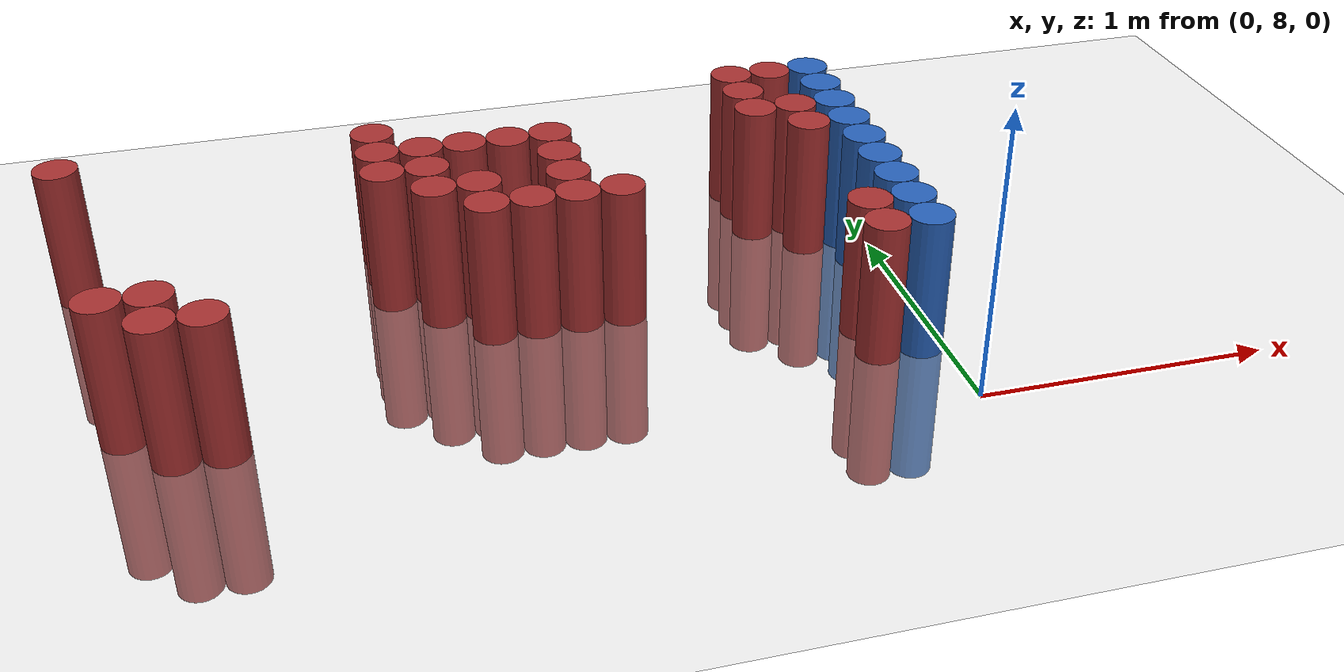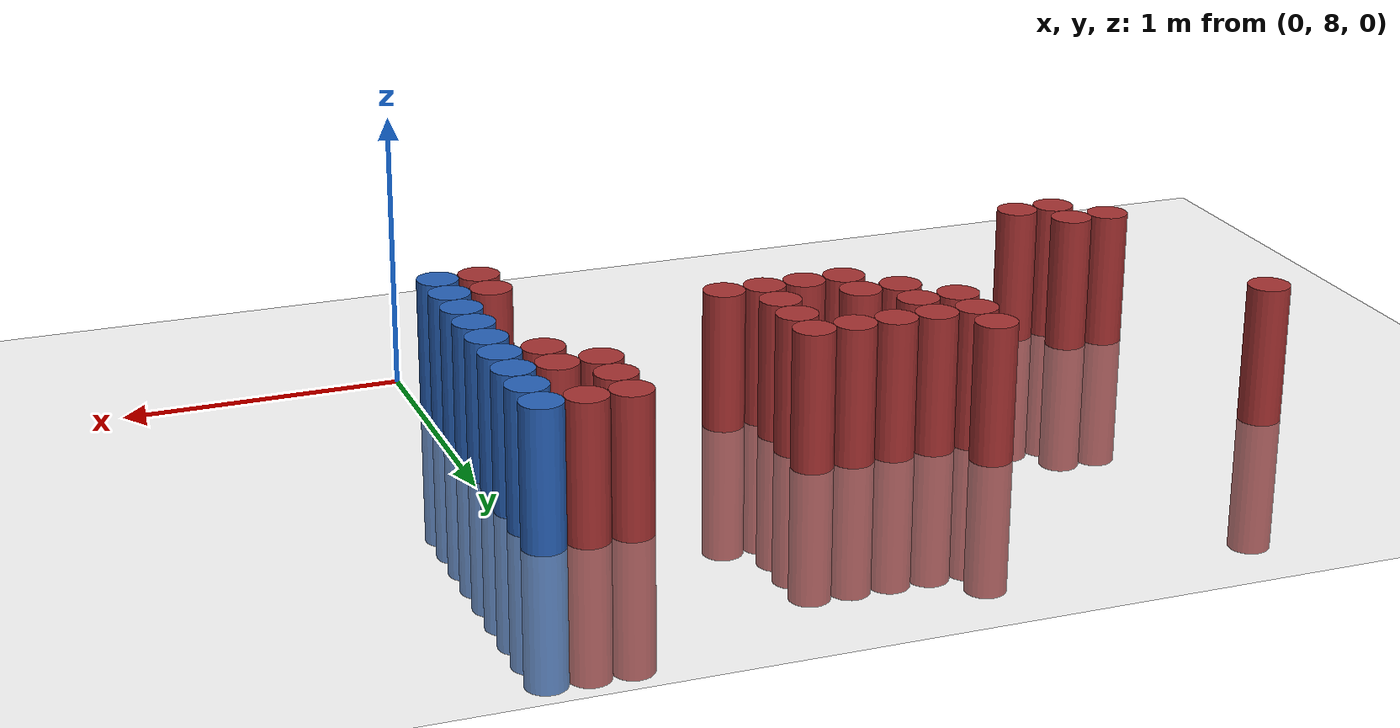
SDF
<sdf version="1.6">
 <world name="default">
  <model name="ground_plane">
   <static>1</static>
   <link name="link">
    <collision name="collision">
     <geometry><plane><normal>0 0 1</normal><size>100 100</size></plane></geometry>
     <surface><friction><ode><mu>100</mu><mu2>50</mu2></ode></friction></surface>
    </collision>
    <visual name="visual">
     <cast_shadows>0</cast_shadows>
     <geometry><plane><normal>0 0 1</normal><size>100 100</size></plane></geometry>
     <material>
      <script><uri>file://media/materials/scripts/gazebo.material</uri><name>Gazebo/Grey</name></script>
     </material>
    </visual>
   </link>
  </model>
  <model name="unit_cylinder_195">
   <static>1</static>
   <pose>-2.775000 9.375000 0.000000 0.000000 0.000000 0.000000</pose>
   <link name="link">
    <inertial>
     <mass>1</mass>
     <inertia><ixx>0.145833</ixx><ixy>0</ixy><ixz>0</ixz><iyy>0.145833</iyy><iyz>0</iyz><izz>0.125</izz></inertia>
    </inertial>
    <collision name="collision">
     <geometry><cylinder><radius>0.075000</radius><length>1</length></cylinder></geometry>
    </collision>
    <visual name="visual">
     <geometry><cylinder><radius>0.075000</radius><length>1</length></cylinder></geometry>
     <material>
      <ambient>0.648000 0.192000 0.192000 1</ambient>
      <diffuse>0.648000 0.192000 0.192000 1</diffuse>
     </material>
     <material>
      <script><name>Gazebo/Grey</name><uri>file://media/materials/scripts/gazebo.material</uri></script>
     </material>
    </visual>
    <sensor name="sensor_contact" type="contact"><contact><collision>collision</collision></contact></sensor>
   </link>
   <plugin filename="gz-sim-touchplugin-system" name="gz::sim::systems::TouchPlugin">
    <target>robot</target>
    <namespace>robot</namespace>
    <time>0.001</time>
    <enabled>true</enabled>
   </plugin>
  </model>
  <model name="unit_cylinder_198">
   <static>1</static>
   <pose>-2.625000 8.475000 0.000000 0.000000 0.000000 0.000000</pose>
   <link name="link">
    <inertial>
     <mass>1</mass>
     <inertia><ixx>0.145833</ixx><ixy>0</ixy><ixz>0</ixz><iyy>0.145833</iyy><iyz>0</iyz><izz>0.125</izz></inertia>
    </inertial>
    <collision name="collision">
     <geometry><cylinder><radius>0.075000</radius><length>1</length></cylinder></geometry>
    </collision>
    <visual name="visual">
     <geometry><cylinder><radius>0.075000</radius><length>1</length></cylinder></geometry>
     <material>
      <ambient>0.648000 0.192000 0.192000 1</ambient>
      <diffuse>0.648000 0.192000 0.192000 1</diffuse>
     </material>
     <material>
      <script><name>Gazebo/Grey</name><uri>file://media/materials/scripts/gazebo.material</uri></script>
     </material>
    </visual>
    <sensor name="sensor_contact" type="contact"><contact><collision>collision</collision></contact></sensor>
   </link>
   <plugin filename="gz-sim-touchplugin-system" name="gz::sim::systems::TouchPlugin">
    <target>robot</target>
    <namespace>robot</namespace>
    <time>0.001</time>
    <enabled>true</enabled>
   </plugin>
  </model>
  <model name="unit_cylinder_200">
   <static>1</static>
   <pose>-2.475000 8.325000 0.000000 0.000000 0.000000 0.000000</pose>
   <link name="link">
    <inertial>
     <mass>1</mass>
     <inertia><ixx>0.145833</ixx><ixy>0</ixy><ixz>0</ixz><iyy>0.145833</iyy><iyz>0</iyz><izz>0.125</izz></inertia>
    </inertial>
    <collision name="collision">
     <geometry><cylinder><radius>0.075000</radius><length>1</length></cylinder></geometry>
    </collision>
    <visual name="visual">
     <geometry><cylinder><radius>0.075000</radius><length>1</length></cylinder></geometry>
     <material>
      <ambient>0.648000 0.192000 0.192000 1</ambient>
      <diffuse>0.648000 0.192000 0.192000 1</diffuse>
     </material>
     <material>
      <script><name>Gazebo/Grey</name><uri>file://media/materials/scripts/gazebo.material</uri></script>
     </material>
    </visual>
    <sensor name="sensor_contact" type="contact"><contact><collision>collision</collision></contact></sensor>
   </link>
   <plugin filename="gz-sim-touchplugin-system" name="gz::sim::systems::TouchPlugin">
    <target>robot</target>
    <namespace>robot</namespace>
    <time>0.001</time>
    <enabled>true</enabled>
   </plugin>
  </model>
  <model name="unit_cylinder_201">
   <static>1</static>
   <pose>-2.475000 8.475000 0.000000 0.000000 0.000000 0.000000</pose>
   <link name="link">
    <inertial>
     <mass>1</mass>
     <inertia><ixx>0.145833</ixx><ixy>0</ixy><ixz>0</ixz><iyy>0.145833</iyy><iyz>0</iyz><izz>0.125</izz></inertia>
    </inertial>
    <collision name="collision">
     <geometry><cylinder><radius>0.075000</radius><length>1</length></cylinder></geometry>
    </collision>
    <visual name="visual">
     <geometry><cylinder><radius>0.075000</radius><length>1</length></cylinder></geometry>
     <material>
      <ambient>0.648000 0.192000 0.192000 1</ambient>
      <diffuse>0.648000 0.192000 0.192000 1</diffuse>
     </material>
     <material>
      <script><name>Gazebo/Grey</name><uri>file://media/materials/scripts/gazebo.material</uri></script>
     </material>
    </visual>
    <sensor name="sensor_contact" type="contact"><contact><collision>collision</collision></contact></sensor>
   </link>
   <plugin filename="gz-sim-touchplugin-system" name="gz::sim::systems::TouchPlugin">
    <target>robot</target>
    <namespace>robot</namespace>
    <time>0.001</time>
    <enabled>true</enabled>
   </plugin>
  </model>
  <model name="unit_cylinder_202">
   <static>1</static>
   <pose>-2.325000 8.325000 0.000000 0.000000 0.000000 0.000000</pose>
   <link name="link">
    <inertial>
     <mass>1</mass>
     <inertia><ixx>0.145833</ixx><ixy>0</ixy><ixz>0</ixz><iyy>0.145833</iyy><iyz>0</iyz><izz>0.125</izz></inertia>
    </inertial>
    <collision name="collision">
     <geometry><cylinder><radius>0.075000</radius><length>1</length></cylinder></geometry>
    </collision>
    <visual name="visual">
     <geometry><cylinder><radius>0.075000</radius><length>1</length></cylinder></geometry>
     <material>
      <ambient>0.648000 0.192000 0.192000 1</ambient>
      <diffuse>0.648000 0.192000 0.192000 1</diffuse>
     </material>
     <material>
      <script><name>Gazebo/Grey</name><uri>file://media/materials/scripts/gazebo.material</uri></script>
     </material>
    </visual>
    <sensor name="sensor_contact" type="contact"><contact><collision>collision</collision></contact></sensor>
   </link>
   <plugin filename="gz-sim-touchplugin-system" name="gz::sim::systems::TouchPlugin">
    <target>robot</target>
    <namespace>robot</namespace>
    <time>0.001</time>
    <enabled>true</enabled>
   </plugin>
  </model>
  <model name="unit_cylinder_217">
   <static>1</static>
   <pose>-1.725000 9.075000 0.000000 0.000000 0.000000 0.000000</pose>
   <link name="link">
    <inertial>
     <mass>1</mass>
     <inertia><ixx>0.145833</ixx><ixy>0</ixy><ixz>0</ixz><iyy>0.145833</iyy><iyz>0</iyz><izz>0.125</izz></inertia>
    </inertial>
    <collision name="collision">
     <geometry><cylinder><radius>0.075000</radius><length>1</length></cylinder></geometry>
    </collision>
    <visual name="visual">
     <geometry><cylinder><radius>0.075000</radius><length>1</length></cylinder></geometry>
     <material>
      <ambient>0.648000 0.192000 0.192000 1</ambient>
      <diffuse>0.648000 0.192000 0.192000 1</diffuse>
     </material>
     <material>
      <script><name>Gazebo/Grey</name><uri>file://media/materials/scripts/gazebo.material</uri></script>
     </material>
    </visual>
    <sensor name="sensor_contact" type="contact"><contact><collision>collision</collision></contact></sensor>
   </link>
   <plugin filename="gz-sim-touchplugin-system" name="gz::sim::systems::TouchPlugin">
    <target>robot</target>
    <namespace>robot</namespace>
    <time>0.001</time>
    <enabled>true</enabled>
   </plugin>
  </model>
  <model name="unit_cylinder_218">
   <static>1</static>
   <pose>-1.725000 9.225000 0.000000 0.000000 0.000000 0.000000</pose>
   <link name="link">
    <inertial>
     <mass>1</mass>
     <inertia><ixx>0.145833</ixx><ixy>0</ixy><ixz>0</ixz><iyy>0.145833</iyy><iyz>0</iyz><izz>0.125</izz></inertia>
    </inertial>
    <collision name="collision">
     <geometry><cylinder><radius>0.075000</radius><length>1</length></cylinder></geometry>
    </collision>
    <visual name="visual">
     <geometry><cylinder><radius>0.075000</radius><length>1</length></cylinder></geometry>
     <material>
      <ambient>0.648000 0.192000 0.192000 1</ambient>
      <diffuse>0.648000 0.192000 0.192000 1</diffuse>
     </material>
     <material>
      <script><name>Gazebo/Grey</name><uri>file://media/materials/scripts/gazebo.material</uri></script>
     </material>
    </visual>
    <sensor name="sensor_contact" type="contact"><contact><collision>collision</collision></contact></sensor>
   </link>
   <plugin filename="gz-sim-touchplugin-system" name="gz::sim::systems::TouchPlugin">
    <target>robot</target>
    <namespace>robot</namespace>
    <time>0.001</time>
    <enabled>true</enabled>
   </plugin>
  </model>
  <model name="unit_cylinder_219">
   <static>1</static>
   <pose>-1.725000 9.375000 0.000000 0.000000 0.000000 0.000000</pose>
   <link name="link">
    <inertial>
     <mass>1</mass>
     <inertia><ixx>0.145833</ixx><ixy>0</ixy><ixz>0</ixz><iyy>0.145833</iyy><iyz>0</iyz><izz>0.125</izz></inertia>
    </inertial>
    <collision name="collision">
     <geometry><cylinder><radius>0.075000</radius><length>1</length></cylinder></geometry>
    </collision>
    <visual name="visual">
     <geometry><cylinder><radius>0.075000</radius><length>1</length></cylinder></geometry>
     <material>
      <ambient>0.648000 0.192000 0.192000 1</ambient>
      <diffuse>0.648000 0.192000 0.192000 1</diffuse>
     </material>
     <material>
      <script><name>Gazebo/Grey</name><uri>file://media/materials/scripts/gazebo.material</uri></script>
     </material>
    </visual>
    <sensor name="sensor_contact" type="contact"><contact><collision>collision</collision></contact></sensor>
   </link>
   <plugin filename="gz-sim-touchplugin-system" name="gz::sim::systems::TouchPlugin">
    <target>robot</target>
    <namespace>robot</namespace>
    <time>0.001</time>
    <enabled>true</enabled>
   </plugin>
  </model>
  <model name="unit_cylinder_225">
   <static>1</static>
   <pose>-1.575000 8.925000 0.000000 0.000000 0.000000 0.000000</pose>
   <link name="link">
    <inertial>
     <mass>1</mass>
     <inertia><ixx>0.145833</ixx><ixy>0</ixy><ixz>0</ixz><iyy>0.145833</iyy><iyz>0</iyz><izz>0.125</izz></inertia>
    </inertial>
    <collision name="collision">
     <geometry><cylinder><radius>0.075000</radius><length>1</length></cylinder></geometry>
    </collision>
    <visual name="visual">
     <geometry><cylinder><radius>0.075000</radius><length>1</length></cylinder></geometry>
     <material>
      <ambient>0.648000 0.192000 0.192000 1</ambient>
      <diffuse>0.648000 0.192000 0.192000 1</diffuse>
     </material>
     <material>
      <script><name>Gazebo/Grey</name><uri>file://media/materials/scripts/gazebo.material</uri></script>
     </material>
    </visual>
    <sensor name="sensor_contact" type="contact"><contact><collision>collision</collision></contact></sensor>
   </link>
   <plugin filename="gz-sim-touchplugin-system" name="gz::sim::systems::TouchPlugin">
    <target>robot</target>
    <namespace>robot</namespace>
    <time>0.001</time>
    <enabled>true</enabled>
   </plugin>
  </model>
  <model name="unit_cylinder_226">
   <static>1</static>
   <pose>-1.575000 9.075000 0.000000 0.000000 0.000000 0.000000</pose>
   <link name="link">
    <inertial>
     <mass>1</mass>
     <inertia><ixx>0.145833</ixx><ixy>0</ixy><ixz>0</ixz><iyy>0.145833</iyy><iyz>0</iyz><izz>0.125</izz></inertia>
    </inertial>
    <collision name="collision">
     <geometry><cylinder><radius>0.075000</radius><length>1</length></cylinder></geometry>
    </collision>
    <visual name="visual">
     <geometry><cylinder><radius>0.075000</radius><length>1</length></cylinder></geometry>
     <material>
      <ambient>0.648000 0.192000 0.192000 1</ambient>
      <diffuse>0.648000 0.192000 0.192000 1</diffuse>
     </material>
     <material>
      <script><name>Gazebo/Grey</name><uri>file://media/materials/scripts/gazebo.material</uri></script>
     </material>
    </visual>
    <sensor name="sensor_contact" type="contact"><contact><collision>collision</collision></contact></sensor>
   </link>
   <plugin filename="gz-sim-touchplugin-system" name="gz::sim::systems::TouchPlugin">
    <target>robot</target>
    <namespace>robot</namespace>
    <time>0.001</time>
    <enabled>true</enabled>
   </plugin>
  </model>
  <model name="unit_cylinder_227">
   <static>1</static>
   <pose>-1.575000 9.225000 0.000000 0.000000 0.000000 0.000000</pose>
   <link name="link">
    <inertial>
     <mass>1</mass>
     <inertia><ixx>0.145833</ixx><ixy>0</ixy><ixz>0</ixz><iyy>0.145833</iyy><iyz>0</iyz><izz>0.125</izz></inertia>
    </inertial>
    <collision name="collision">
     <geometry><cylinder><radius>0.075000</radius><length>1</length></cylinder></geometry>
    </collision>
    <visual name="visual">
     <geometry><cylinder><radius>0.075000</radius><length>1</length></cylinder></geometry>
     <material>
      <ambient>0.648000 0.192000 0.192000 1</ambient>
      <diffuse>0.648000 0.192000 0.192000 1</diffuse>
     </material>
     <material>
      <script><name>Gazebo/Grey</name><uri>file://media/materials/scripts/gazebo.material</uri></script>
     </material>
    </visual>
    <sensor name="sensor_contact" type="contact"><contact><collision>collision</collision></contact></sensor>
   </link>
   <plugin filename="gz-sim-touchplugin-system" name="gz::sim::systems::TouchPlugin">
    <target>robot</target>
    <namespace>robot</namespace>
    <time>0.001</time>
    <enabled>true</enabled>
   </plugin>
  </model>
  <model name="unit_cylinder_234">
   <static>1</static>
   <pose>-1.425000 8.775000 0.000000 0.000000 0.000000 0.000000</pose>
   <link name="link">
    <inertial>
     <mass>1</mass>
     <inertia><ixx>0.145833</ixx><ixy>0</ixy><ixz>0</ixz><iyy>0.145833</iyy><iyz>0</iyz><izz>0.125</izz></inertia>
    </inertial>
    <collision name="collision">
     <geometry><cylinder><radius>0.075000</radius><length>1</length></cylinder></geometry>
    </collision>
    <visual name="visual">
     <geometry><cylinder><radius>0.075000</radius><length>1</length></cylinder></geometry>
     <material>
      <ambient>0.648000 0.192000 0.192000 1</ambient>
      <diffuse>0.648000 0.192000 0.192000 1</diffuse>
     </material>
     <material>
      <script><name>Gazebo/Grey</name><uri>file://media/materials/scripts/gazebo.material</uri></script>
     </material>
    </visual>
    <sensor name="sensor_contact" type="contact"><contact><collision>collision</collision></contact></sensor>
   </link>
   <plugin filename="gz-sim-touchplugin-system" name="gz::sim::systems::TouchPlugin">
    <target>robot</target>
    <namespace>robot</namespace>
    <time>0.001</time>
    <enabled>true</enabled>
   </plugin>
  </model>
  <model name="unit_cylinder_235">
   <static>1</static>
   <pose>-1.425000 8.925000 0.000000 0.000000 0.000000 0.000000</pose>
   <link name="link">
    <inertial>
     <mass>1</mass>
     <inertia><ixx>0.145833</ixx><ixy>0</ixy><ixz>0</ixz><iyy>0.145833</iyy><iyz>0</iyz><izz>0.125</izz></inertia>
    </inertial>
    <collision name="collision">
     <geometry><cylinder><radius>0.075000</radius><length>1</length></cylinder></geometry>
    </collision>
    <visual name="visual">
     <geometry><cylinder><radius>0.075000</radius><length>1</length></cylinder></geometry>
     <material>
      <ambient>0.648000 0.192000 0.192000 1</ambient>
      <diffuse>0.648000 0.192000 0.192000 1</diffuse>
     </material>
     <material>
      <script><name>Gazebo/Grey</name><uri>file://media/materials/scripts/gazebo.material</uri></script>
     </material>
    </visual>
    <sensor name="sensor_contact" type="contact"><contact><collision>collision</collision></contact></sensor>
   </link>
   <plugin filename="gz-sim-touchplugin-system" name="gz::sim::systems::TouchPlugin">
    <target>robot</target>
    <namespace>robot</namespace>
    <time>0.001</time>
    <enabled>true</enabled>
   </plugin>
  </model>
  <model name="unit_cylinder_236">
   <static>1</static>
   <pose>-1.425000 9.225000 0.000000 0.000000 0.000000 0.000000</pose>
   <link name="link">
    <inertial>
     <mass>1</mass>
     <inertia><ixx>0.145833</ixx><ixy>0</ixy><ixz>0</ixz><iyy>0.145833</iyy><iyz>0</iyz><izz>0.125</izz></inertia>
    </inertial>
    <collision name="collision">
     <geometry><cylinder><radius>0.075000</radius><length>1</length></cylinder></geometry>
    </collision>
    <visual name="visual">
     <geometry><cylinder><radius>0.075000</radius><length>1</length></cylinder></geometry>
     <material>
      <ambient>0.648000 0.192000 0.192000 1</ambient>
      <diffuse>0.648000 0.192000 0.192000 1</diffuse>
     </material>
     <material>
      <script><name>Gazebo/Grey</name><uri>file://media/materials/scripts/gazebo.material</uri></script>
     </material>
    </visual>
    <sensor name="sensor_contact" type="contact"><contact><collision>collision</collision></contact></sensor>
   </link>
   <plugin filename="gz-sim-touchplugin-system" name="gz::sim::systems::TouchPlugin">
    <target>robot</target>
    <namespace>robot</namespace>
    <time>0.001</time>
    <enabled>true</enabled>
   </plugin>
  </model>
  <model name="unit_cylinder_242">
   <static>1</static>
   <pose>-1.275000 8.775000 0.000000 0.000000 0.000000 0.000000</pose>
   <link name="link">
    <inertial>
     <mass>1</mass>
     <inertia><ixx>0.145833</ixx><ixy>0</ixy><ixz>0</ixz><iyy>0.145833</iyy><iyz>0</iyz><izz>0.125</izz></inertia>
    </inertial>
    <collision name="collision">
     <geometry><cylinder><radius>0.075000</radius><length>1</length></cylinder></geometry>
    </collision>
    <visual name="visual">
     <geometry><cylinder><radius>0.075000</radius><length>1</length></cylinder></geometry>
     <material>
      <ambient>0.648000 0.192000 0.192000 1</ambient>
      <diffuse>0.648000 0.192000 0.192000 1</diffuse>
     </material>
     <material>
      <script><name>Gazebo/Grey</name><uri>file://media/materials/scripts/gazebo.material</uri></script>
     </material>
    </visual>
    <sensor name="sensor_contact" type="contact"><contact><collision>collision</collision></contact></sensor>
   </link>
   <plugin filename="gz-sim-touchplugin-system" name="gz::sim::systems::TouchPlugin">
    <target>robot</target>
    <namespace>robot</namespace>
    <time>0.001</time>
    <enabled>true</enabled>
   </plugin>
  </model>
  <model name="unit_cylinder_243">
   <static>1</static>
   <pose>-1.275000 9.225000 0.000000 0.000000 0.000000 0.000000</pose>
   <link name="link">
    <inertial>
     <mass>1</mass>
     <inertia><ixx>0.145833</ixx><ixy>0</ixy><ixz>0</ixz><iyy>0.145833</iyy><iyz>0</iyz><izz>0.125</izz></inertia>
    </inertial>
    <collision name="collision">
     <geometry><cylinder><radius>0.075000</radius><length>1</length></cylinder></geometry>
    </collision>
    <visual name="visual">
     <geometry><cylinder><radius>0.075000</radius><length>1</length></cylinder></geometry>
     <material>
      <ambient>0.648000 0.192000 0.192000 1</ambient>
      <diffuse>0.648000 0.192000 0.192000 1</diffuse>
     </material>
     <material>
      <script><name>Gazebo/Grey</name><uri>file://media/materials/scripts/gazebo.material</uri></script>
     </material>
    </visual>
    <sensor name="sensor_contact" type="contact"><contact><collision>collision</collision></contact></sensor>
   </link>
   <plugin filename="gz-sim-touchplugin-system" name="gz::sim::systems::TouchPlugin">
    <target>robot</target>
    <namespace>robot</namespace>
    <time>0.001</time>
    <enabled>true</enabled>
   </plugin>
  </model>
  <model name="unit_cylinder_250">
   <static>1</static>
   <pose>-1.125000 8.775000 0.000000 0.000000 0.000000 0.000000</pose>
   <link name="link">
    <inertial>
     <mass>1</mass>
     <inertia><ixx>0.145833</ixx><ixy>0</ixy><ixz>0</ixz><iyy>0.145833</iyy><iyz>0</iyz><izz>0.125</izz></inertia>
    </inertial>
    <collision name="collision">
     <geometry><cylinder><radius>0.075000</radius><length>1</length></cylinder></geometry>
    </collision>
    <visual name="visual">
     <geometry><cylinder><radius>0.075000</radius><length>1</length></cylinder></geometry>
     <material>
      <ambient>0.648000 0.192000 0.192000 1</ambient>
      <diffuse>0.648000 0.192000 0.192000 1</diffuse>
     </material>
     <material>
      <script><name>Gazebo/Grey</name><uri>file://media/materials/scripts/gazebo.material</uri></script>
     </material>
    </visual>
    <sensor name="sensor_contact" type="contact"><contact><collision>collision</collision></contact></sensor>
   </link>
   <plugin filename="gz-sim-touchplugin-system" name="gz::sim::systems::TouchPlugin">
    <target>robot</target>
    <namespace>robot</namespace>
    <time>0.001</time>
    <enabled>true</enabled>
   </plugin>
  </model>
  <model name="unit_cylinder_251">
   <static>1</static>
   <pose>-1.125000 8.925000 0.000000 0.000000 0.000000 0.000000</pose>
   <link name="link">
    <inertial>
     <mass>1</mass>
     <inertia><ixx>0.145833</ixx><ixy>0</ixy><ixz>0</ixz><iyy>0.145833</iyy><iyz>0</iyz><izz>0.125</izz></inertia>
    </inertial>
    <collision name="collision">
     <geometry><cylinder><radius>0.075000</radius><length>1</length></cylinder></geometry>
    </collision>
    <visual name="visual">
     <geometry><cylinder><radius>0.075000</radius><length>1</length></cylinder></geometry>
     <material>
      <ambient>0.648000 0.192000 0.192000 1</ambient>
      <diffuse>0.648000 0.192000 0.192000 1</diffuse>
     </material>
     <material>
      <script><name>Gazebo/Grey</name><uri>file://media/materials/scripts/gazebo.material</uri></script>
     </material>
    </visual>
    <sensor name="sensor_contact" type="contact"><contact><collision>collision</collision></contact></sensor>
   </link>
   <plugin filename="gz-sim-touchplugin-system" name="gz::sim::systems::TouchPlugin">
    <target>robot</target>
    <namespace>robot</namespace>
    <time>0.001</time>
    <enabled>true</enabled>
   </plugin>
  </model>
  <model name="unit_cylinder_252">
   <static>1</static>
   <pose>-1.125000 9.075000 0.000000 0.000000 0.000000 0.000000</pose>
   <link name="link">
    <inertial>
     <mass>1</mass>
     <inertia><ixx>0.145833</ixx><ixy>0</ixy><ixz>0</ixz><iyy>0.145833</iyy><iyz>0</iyz><izz>0.125</izz></inertia>
    </inertial>
    <collision name="collision">
     <geometry><cylinder><radius>0.075000</radius><length>1</length></cylinder></geometry>
    </collision>
    <visual name="visual">
     <geometry><cylinder><radius>0.075000</radius><length>1</length></cylinder></geometry>
     <material>
      <ambient>0.648000 0.192000 0.192000 1</ambient>
      <diffuse>0.648000 0.192000 0.192000 1</diffuse>
     </material>
     <material>
      <script><name>Gazebo/Grey</name><uri>file://media/materials/scripts/gazebo.material</uri></script>
     </material>
    </visual>
    <sensor name="sensor_contact" type="contact"><contact><collision>collision</collision></contact></sensor>
   </link>
   <plugin filename="gz-sim-touchplugin-system" name="gz::sim::systems::TouchPlugin">
    <target>robot</target>
    <namespace>robot</namespace>
    <time>0.001</time>
    <enabled>true</enabled>
   </plugin>
  </model>
  <model name="unit_cylinder_253">
   <static>1</static>
   <pose>-1.125000 9.225000 0.000000 0.000000 0.000000 0.000000</pose>
   <link name="link">
    <inertial>
     <mass>1</mass>
     <inertia><ixx>0.145833</ixx><ixy>0</ixy><ixz>0</ixz><iyy>0.145833</iyy><iyz>0</iyz><izz>0.125</izz></inertia>
    </inertial>
    <collision name="collision">
     <geometry><cylinder><radius>0.075000</radius><length>1</length></cylinder></geometry>
    </collision>
    <visual name="visual">
     <geometry><cylinder><radius>0.075000</radius><length>1</length></cylinder></geometry>
     <material>
      <ambient>0.648000 0.192000 0.192000 1</ambient>
      <diffuse>0.648000 0.192000 0.192000 1</diffuse>
     </material>
     <material>
      <script><name>Gazebo/Grey</name><uri>file://media/materials/scripts/gazebo.material</uri></script>
     </material>
    </visual>
    <sensor name="sensor_contact" type="contact"><contact><collision>collision</collision></contact></sensor>
   </link>
   <plugin filename="gz-sim-touchplugin-system" name="gz::sim::systems::TouchPlugin">
    <target>robot</target>
    <namespace>robot</namespace>
    <time>0.001</time>
    <enabled>true</enabled>
   </plugin>
  </model>
  <model name="unit_cylinder_257">
   <static>1</static>
   <pose>-0.975000 8.775000 0.000000 0.000000 0.000000 0.000000</pose>
   <link name="link">
    <inertial>
     <mass>1</mass>
     <inertia><ixx>0.145833</ixx><ixy>0</ixy><ixz>0</ixz><iyy>0.145833</iyy><iyz>0</iyz><izz>0.125</izz></inertia>
    </inertial>
    <collision name="collision">
     <geometry><cylinder><radius>0.075000</radius><length>1</length></cylinder></geometry>
    </collision>
    <visual name="visual">
     <geometry><cylinder><radius>0.075000</radius><length>1</length></cylinder></geometry>
     <material>
      <ambient>0.648000 0.192000 0.192000 1</ambient>
      <diffuse>0.648000 0.192000 0.192000 1</diffuse>
     </material>
     <material>
      <script><name>Gazebo/Grey</name><uri>file://media/materials/scripts/gazebo.material</uri></script>
     </material>
    </visual>
    <sensor name="sensor_contact" type="contact"><contact><collision>collision</collision></contact></sensor>
   </link>
   <plugin filename="gz-sim-touchplugin-system" name="gz::sim::systems::TouchPlugin">
    <target>robot</target>
    <namespace>robot</namespace>
    <time>0.001</time>
    <enabled>true</enabled>
   </plugin>
  </model>
  <model name="unit_cylinder_282">
   <static>1</static>
   <pose>-0.375000 9.225000 0.000000 0.000000 0.000000 0.000000</pose>
   <link name="link">
    <inertial>
     <mass>1</mass>
     <inertia><ixx>0.145833</ixx><ixy>0</ixy><ixz>0</ixz><iyy>0.145833</iyy><iyz>0</iyz><izz>0.125</izz></inertia>
    </inertial>
    <collision name="collision">
     <geometry><cylinder><radius>0.075000</radius><length>1</length></cylinder></geometry>
    </collision>
    <visual name="visual">
     <geometry><cylinder><radius>0.075000</radius><length>1</length></cylinder></geometry>
     <material>
      <ambient>0.648000 0.192000 0.192000 1</ambient>
      <diffuse>0.648000 0.192000 0.192000 1</diffuse>
     </material>
     <material>
      <script><name>Gazebo/Grey</name><uri>file://media/materials/scripts/gazebo.material</uri></script>
     </material>
    </visual>
    <sensor name="sensor_contact" type="contact"><contact><collision>collision</collision></contact></sensor>
   </link>
   <plugin filename="gz-sim-touchplugin-system" name="gz::sim::systems::TouchPlugin">
    <target>robot</target>
    <namespace>robot</namespace>
    <time>0.001</time>
    <enabled>true</enabled>
   </plugin>
  </model>
  <model name="unit_cylinder_283">
   <static>1</static>
   <pose>-0.375000 9.375000 0.000000 0.000000 0.000000 0.000000</pose>
   <link name="link">
    <inertial>
     <mass>1</mass>
     <inertia><ixx>0.145833</ixx><ixy>0</ixy><ixz>0</ixz><iyy>0.145833</iyy><iyz>0</iyz><izz>0.125</izz></inertia>
    </inertial>
    <collision name="collision">
     <geometry><cylinder><radius>0.075000</radius><length>1</length></cylinder></geometry>
    </collision>
    <visual name="visual">
     <geometry><cylinder><radius>0.075000</radius><length>1</length></cylinder></geometry>
     <material>
      <ambient>0.648000 0.192000 0.192000 1</ambient>
      <diffuse>0.648000 0.192000 0.192000 1</diffuse>
     </material>
     <material>
      <script><name>Gazebo/Grey</name><uri>file://media/materials/scripts/gazebo.material</uri></script>
     </material>
    </visual>
    <sensor name="sensor_contact" type="contact"><contact><collision>collision</collision></contact></sensor>
   </link>
   <plugin filename="gz-sim-touchplugin-system" name="gz::sim::systems::TouchPlugin">
    <target>robot</target>
    <namespace>robot</namespace>
    <time>0.001</time>
    <enabled>true</enabled>
   </plugin>
  </model>
  <model name="unit_cylinder_284">
   <static>1</static>
   <pose>-0.375000 9.525000 0.000000 0.000000 0.000000 0.000000</pose>
   <link name="link">
    <inertial>
     <mass>1</mass>
     <inertia><ixx>0.145833</ixx><ixy>0</ixy><ixz>0</ixz><iyy>0.145833</iyy><iyz>0</iyz><izz>0.125</izz></inertia>
    </inertial>
    <collision name="collision">
     <geometry><cylinder><radius>0.075000</radius><length>1</length></cylinder></geometry>
    </collision>
    <visual name="visual">
     <geometry><cylinder><radius>0.075000</radius><length>1</length></cylinder></geometry>
     <material>
      <ambient>0.648000 0.192000 0.192000 1</ambient>
      <diffuse>0.648000 0.192000 0.192000 1</diffuse>
     </material>
     <material>
      <script><name>Gazebo/Grey</name><uri>file://media/materials/scripts/gazebo.material</uri></script>
     </material>
    </visual>
    <sensor name="sensor_contact" type="contact"><contact><collision>collision</collision></contact></sensor>
   </link>
   <plugin filename="gz-sim-touchplugin-system" name="gz::sim::systems::TouchPlugin">
    <target>robot</target>
    <namespace>robot</namespace>
    <time>0.001</time>
    <enabled>true</enabled>
   </plugin>
  </model>
  <model name="unit_cylinder_300">
   <static>1</static>
   <pose>-0.225000 8.325000 0.000000 0.000000 0.000000 0.000000</pose>
   <link name="link">
    <inertial>
     <mass>1</mass>
     <inertia><ixx>0.145833</ixx><ixy>0</ixy><ixz>0</ixz><iyy>0.145833</iyy><iyz>0</iyz><izz>0.125</izz></inertia>
    </inertial>
    <collision name="collision">
     <geometry><cylinder><radius>0.075000</radius><length>1</length></cylinder></geometry>
    </collision>
    <visual name="visual">
     <geometry><cylinder><radius>0.075000</radius><length>1</length></cylinder></geometry>
     <material>
      <ambient>0.648000 0.192000 0.192000 1</ambient>
      <diffuse>0.648000 0.192000 0.192000 1</diffuse>
     </material>
     <material>
      <script><name>Gazebo/Grey</name><uri>file://media/materials/scripts/gazebo.material</uri></script>
     </material>
    </visual>
    <sensor name="sensor_contact" type="contact"><contact><collision>collision</collision></contact></sensor>
   </link>
   <plugin filename="gz-sim-touchplugin-system" name="gz::sim::systems::TouchPlugin">
    <target>robot</target>
    <namespace>robot</namespace>
    <time>0.001</time>
    <enabled>true</enabled>
   </plugin>
  </model>
  <model name="unit_cylinder_301">
   <static>1</static>
   <pose>-0.225000 8.475000 0.000000 0.000000 0.000000 0.000000</pose>
   <link name="link">
    <inertial>
     <mass>1</mass>
     <inertia><ixx>0.145833</ixx><ixy>0</ixy><ixz>0</ixz><iyy>0.145833</iyy><iyz>0</iyz><izz>0.125</izz></inertia>
    </inertial>
    <collision name="collision">
     <geometry><cylinder><radius>0.075000</radius><length>1</length></cylinder></geometry>
    </collision>
    <visual name="visual">
     <geometry><cylinder><radius>0.075000</radius><length>1</length></cylinder></geometry>
     <material>
      <ambient>0.648000 0.192000 0.192000 1</ambient>
      <diffuse>0.648000 0.192000 0.192000 1</diffuse>
     </material>
     <material>
      <script><name>Gazebo/Grey</name><uri>file://media/materials/scripts/gazebo.material</uri></script>
     </material>
    </visual>
    <sensor name="sensor_contact" type="contact"><contact><collision>collision</collision></contact></sensor>
   </link>
   <plugin filename="gz-sim-touchplugin-system" name="gz::sim::systems::TouchPlugin">
    <target>robot</target>
    <namespace>robot</namespace>
    <time>0.001</time>
    <enabled>true</enabled>
   </plugin>
  </model>
  <model name="unit_cylinder_302">
   <static>1</static>
   <pose>-0.225000 9.075000 0.000000 0.000000 0.000000 0.000000</pose>
   <link name="link">
    <inertial>
     <mass>1</mass>
     <inertia><ixx>0.145833</ixx><ixy>0</ixy><ixz>0</ixz><iyy>0.145833</iyy><iyz>0</iyz><izz>0.125</izz></inertia>
    </inertial>
    <collision name="collision">
     <geometry><cylinder><radius>0.075000</radius><length>1</length></cylinder></geometry>
    </collision>
    <visual name="visual">
     <geometry><cylinder><radius>0.075000</radius><length>1</length></cylinder></geometry>
     <material>
      <ambient>0.648000 0.192000 0.192000 1</ambient>
      <diffuse>0.648000 0.192000 0.192000 1</diffuse>
     </material>
     <material>
      <script><name>Gazebo/Grey</name><uri>file://media/materials/scripts/gazebo.material</uri></script>
     </material>
    </visual>
    <sensor name="sensor_contact" type="contact"><contact><collision>collision</collision></contact></sensor>
   </link>
   <plugin filename="gz-sim-touchplugin-system" name="gz::sim::systems::TouchPlugin">
    <target>robot</target>
    <namespace>robot</namespace>
    <time>0.001</time>
    <enabled>true</enabled>
   </plugin>
  </model>
  <model name="unit_cylinder_303">
   <static>1</static>
   <pose>-0.225000 9.225000 0.000000 0.000000 0.000000 0.000000</pose>
   <link name="link">
    <inertial>
     <mass>1</mass>
     <inertia><ixx>0.145833</ixx><ixy>0</ixy><ixz>0</ixz><iyy>0.145833</iyy><iyz>0</iyz><izz>0.125</izz></inertia>
    </inertial>
    <collision name="collision">
     <geometry><cylinder><radius>0.075000</radius><length>1</length></cylinder></geometry>
    </collision>
    <visual name="visual">
     <geometry><cylinder><radius>0.075000</radius><length>1</length></cylinder></geometry>
     <material>
      <ambient>0.648000 0.192000 0.192000 1</ambient>
      <diffuse>0.648000 0.192000 0.192000 1</diffuse>
     </material>
     <material>
      <script><name>Gazebo/Grey</name><uri>file://media/materials/scripts/gazebo.material</uri></script>
     </material>
    </visual>
    <sensor name="sensor_contact" type="contact"><contact><collision>collision</collision></contact></sensor>
   </link>
   <plugin filename="gz-sim-touchplugin-system" name="gz::sim::systems::TouchPlugin">
    <target>robot</target>
    <namespace>robot</namespace>
    <time>0.001</time>
    <enabled>true</enabled>
   </plugin>
  </model>
  <model name="unit_cylinder_304">
   <static>1</static>
   <pose>-0.225000 9.525000 0.000000 0.000000 0.000000 0.000000</pose>
   <link name="link">
    <inertial>
     <mass>1</mass>
     <inertia><ixx>0.145833</ixx><ixy>0</ixy><ixz>0</ixz><iyy>0.145833</iyy><iyz>0</iyz><izz>0.125</izz></inertia>
    </inertial>
    <collision name="collision">
     <geometry><cylinder><radius>0.075000</radius><length>1</length></cylinder></geometry>
    </collision>
    <visual name="visual">
     <geometry><cylinder><radius>0.075000</radius><length>1</length></cylinder></geometry>
     <material>
      <ambient>0.648000 0.192000 0.192000 1</ambient>
      <diffuse>0.648000 0.192000 0.192000 1</diffuse>
     </material>
     <material>
      <script><name>Gazebo/Grey</name><uri>file://media/materials/scripts/gazebo.material</uri></script>
     </material>
    </visual>
    <sensor name="sensor_contact" type="contact"><contact><collision>collision</collision></contact></sensor>
   </link>
   <plugin filename="gz-sim-touchplugin-system" name="gz::sim::systems::TouchPlugin">
    <target>robot</target>
    <namespace>robot</namespace>
    <time>0.001</time>
    <enabled>true</enabled>
   </plugin>
  </model>
  <model name="unit_cylinder_326">
   <static>1</static>
   <pose>-0.075000 8.325000 0.000000 0.000000 0.000000 0.000000</pose>
   <link name="link">
    <inertial>
     <mass>1</mass>
     <inertia><ixx>0.145833</ixx><ixy>0</ixy><ixz>0</ixz><iyy>0.145833</iyy><iyz>0</iyz><izz>0.125</izz></inertia>
    </inertial>
    <collision name="collision">
     <geometry><cylinder><radius>0.075000</radius><length>1</length></cylinder></geometry>
    </collision>
    <visual name="visual">
     <geometry><cylinder><radius>0.075000</radius><length>1</length></cylinder></geometry>
     <material>
      <ambient>0.152000 0.379000 0.720000 1</ambient>
      <diffuse>0.152000 0.379000 0.720000 1</diffuse>
     </material>
     <material>
      <script><name>Gazebo/Grey</name><uri>file://media/materials/scripts/gazebo.material</uri></script>
     </material>
    </visual>
    <sensor name="sensor_contact" type="contact"><contact><collision>collision</collision></contact></sensor>
   </link>
   <plugin filename="gz-sim-touchplugin-system" name="gz::sim::systems::TouchPlugin">
    <target>robot</target>
    <namespace>robot</namespace>
    <time>0.001</time>
    <enabled>true</enabled>
   </plugin>
  </model>
  <model name="unit_cylinder_327">
   <static>1</static>
   <pose>-0.075000 8.475000 0.000000 0.000000 0.000000 0.000000</pose>
   <link name="link">
    <inertial>
     <mass>1</mass>
     <inertia><ixx>0.145833</ixx><ixy>0</ixy><ixz>0</ixz><iyy>0.145833</iyy><iyz>0</iyz><izz>0.125</izz></inertia>
    </inertial>
    <collision name="collision">
     <geometry><cylinder><radius>0.075000</radius><length>1</length></cylinder></geometry>
    </collision>
    <visual name="visual">
     <geometry><cylinder><radius>0.075000</radius><length>1</length></cylinder></geometry>
     <material>
      <ambient>0.152000 0.379000 0.720000 1</ambient>
      <diffuse>0.152000 0.379000 0.720000 1</diffuse>
     </material>
     <material>
      <script><name>Gazebo/Grey</name><uri>file://media/materials/scripts/gazebo.material</uri></script>
     </material>
    </visual>
    <sensor name="sensor_contact" type="contact"><contact><collision>collision</collision></contact></sensor>
   </link>
   <plugin filename="gz-sim-touchplugin-system" name="gz::sim::systems::TouchPlugin">
    <target>robot</target>
    <namespace>robot</namespace>
    <time>0.001</time>
    <enabled>true</enabled>
   </plugin>
  </model>
  <model name="unit_cylinder_328">
   <static>1</static>
   <pose>-0.075000 8.625000 0.000000 0.000000 0.000000 0.000000</pose>
   <link name="link">
    <inertial>
     <mass>1</mass>
     <inertia><ixx>0.145833</ixx><ixy>0</ixy><ixz>0</ixz><iyy>0.145833</iyy><iyz>0</iyz><izz>0.125</izz></inertia>
    </inertial>
    <collision name="collision">
     <geometry><cylinder><radius>0.075000</radius><length>1</length></cylinder></geometry>
    </collision>
    <visual name="visual">
     <geometry><cylinder><radius>0.075000</radius><length>1</length></cylinder></geometry>
     <material>
      <ambient>0.152000 0.379000 0.720000 1</ambient>
      <diffuse>0.152000 0.379000 0.720000 1</diffuse>
     </material>
     <material>
      <script><name>Gazebo/Grey</name><uri>file://media/materials/scripts/gazebo.material</uri></script>
     </material>
    </visual>
    <sensor name="sensor_contact" type="contact"><contact><collision>collision</collision></contact></sensor>
   </link>
   <plugin filename="gz-sim-touchplugin-system" name="gz::sim::systems::TouchPlugin">
    <target>robot</target>
    <namespace>robot</namespace>
    <time>0.001</time>
    <enabled>true</enabled>
   </plugin>
  </model>
  <model name="unit_cylinder_329">
   <static>1</static>
   <pose>-0.075000 8.775000 0.000000 0.000000 0.000000 0.000000</pose>
   <link name="link">
    <inertial>
     <mass>1</mass>
     <inertia><ixx>0.145833</ixx><ixy>0</ixy><ixz>0</ixz><iyy>0.145833</iyy><iyz>0</iyz><izz>0.125</izz></inertia>
    </inertial>
    <collision name="collision">
     <geometry><cylinder><radius>0.075000</radius><length>1</length></cylinder></geometry>
    </collision>
    <visual name="visual">
     <geometry><cylinder><radius>0.075000</radius><length>1</length></cylinder></geometry>
     <material>
      <ambient>0.152000 0.379000 0.720000 1</ambient>
      <diffuse>0.152000 0.379000 0.720000 1</diffuse>
     </material>
     <material>
      <script><name>Gazebo/Grey</name><uri>file://media/materials/scripts/gazebo.material</uri></script>
     </material>
    </visual>
    <sensor name="sensor_contact" type="contact"><contact><collision>collision</collision></contact></sensor>
   </link>
   <plugin filename="gz-sim-touchplugin-system" name="gz::sim::systems::TouchPlugin">
    <target>robot</target>
    <namespace>robot</namespace>
    <time>0.001</time>
    <enabled>true</enabled>
   </plugin>
  </model>
  <model name="unit_cylinder_330">
   <static>1</static>
   <pose>-0.075000 8.925000 0.000000 0.000000 0.000000 0.000000</pose>
   <link name="link">
    <inertial>
     <mass>1</mass>
     <inertia><ixx>0.145833</ixx><ixy>0</ixy><ixz>0</ixz><iyy>0.145833</iyy><iyz>0</iyz><izz>0.125</izz></inertia>
    </inertial>
    <collision name="collision">
     <geometry><cylinder><radius>0.075000</radius><length>1</length></cylinder></geometry>
    </collision>
    <visual name="visual">
     <geometry><cylinder><radius>0.075000</radius><length>1</length></cylinder></geometry>
     <material>
      <ambient>0.152000 0.379000 0.720000 1</ambient>
      <diffuse>0.152000 0.379000 0.720000 1</diffuse>
     </material>
     <material>
      <script><name>Gazebo/Grey</name><uri>file://media/materials/scripts/gazebo.material</uri></script>
     </material>
    </visual>
    <sensor name="sensor_contact" type="contact"><contact><collision>collision</collision></contact></sensor>
   </link>
   <plugin filename="gz-sim-touchplugin-system" name="gz::sim::systems::TouchPlugin">
    <target>robot</target>
    <namespace>robot</namespace>
    <time>0.001</time>
    <enabled>true</enabled>
   </plugin>
  </model>
  <model name="unit_cylinder_331">
   <static>1</static>
   <pose>-0.075000 9.075000 0.000000 0.000000 0.000000 0.000000</pose>
   <link name="link">
    <inertial>
     <mass>1</mass>
     <inertia><ixx>0.145833</ixx><ixy>0</ixy><ixz>0</ixz><iyy>0.145833</iyy><iyz>0</iyz><izz>0.125</izz></inertia>
    </inertial>
    <collision name="collision">
     <geometry><cylinder><radius>0.075000</radius><length>1</length></cylinder></geometry>
    </collision>
    <visual name="visual">
     <geometry><cylinder><radius>0.075000</radius><length>1</length></cylinder></geometry>
     <material>
      <ambient>0.152000 0.379000 0.720000 1</ambient>
      <diffuse>0.152000 0.379000 0.720000 1</diffuse>
     </material>
     <material>
      <script><name>Gazebo/Grey</name><uri>file://media/materials/scripts/gazebo.material</uri></script>
     </material>
    </visual>
    <sensor name="sensor_contact" type="contact"><contact><collision>collision</collision></contact></sensor>
   </link>
   <plugin filename="gz-sim-touchplugin-system" name="gz::sim::systems::TouchPlugin">
    <target>robot</target>
    <namespace>robot</namespace>
    <time>0.001</time>
    <enabled>true</enabled>
   </plugin>
  </model>
  <model name="unit_cylinder_332">
   <static>1</static>
   <pose>-0.075000 9.225000 0.000000 0.000000 0.000000 0.000000</pose>
   <link name="link">
    <inertial>
     <mass>1</mass>
     <inertia><ixx>0.145833</ixx><ixy>0</ixy><ixz>0</ixz><iyy>0.145833</iyy><iyz>0</iyz><izz>0.125</izz></inertia>
    </inertial>
    <collision name="collision">
     <geometry><cylinder><radius>0.075000</radius><length>1</length></cylinder></geometry>
    </collision>
    <visual name="visual">
     <geometry><cylinder><radius>0.075000</radius><length>1</length></cylinder></geometry>
     <material>
      <ambient>0.152000 0.379000 0.720000 1</ambient>
      <diffuse>0.152000 0.379000 0.720000 1</diffuse>
     </material>
     <material>
      <script><name>Gazebo/Grey</name><uri>file://media/materials/scripts/gazebo.material</uri></script>
     </material>
    </visual>
    <sensor name="sensor_contact" type="contact"><contact><collision>collision</collision></contact></sensor>
   </link>
   <plugin filename="gz-sim-touchplugin-system" name="gz::sim::systems::TouchPlugin">
    <target>robot</target>
    <namespace>robot</namespace>
    <time>0.001</time>
    <enabled>true</enabled>
   </plugin>
  </model>
  <model name="unit_cylinder_333">
   <static>1</static>
   <pose>-0.075000 9.375000 0.000000 0.000000 0.000000 0.000000</pose>
   <link name="link">
    <inertial>
     <mass>1</mass>
     <inertia><ixx>0.145833</ixx><ixy>0</ixy><ixz>0</ixz><iyy>0.145833</iyy><iyz>0</iyz><izz>0.125</izz></inertia>
    </inertial>
    <collision name="collision">
     <geometry><cylinder><radius>0.075000</radius><length>1</length></cylinder></geometry>
    </collision>
    <visual name="visual">
     <geometry><cylinder><radius>0.075000</radius><length>1</length></cylinder></geometry>
     <material>
      <ambient>0.152000 0.379000 0.720000 1</ambient>
      <diffuse>0.152000 0.379000 0.720000 1</diffuse>
     </material>
     <material>
      <script><name>Gazebo/Grey</name><uri>file://media/materials/scripts/gazebo.material</uri></script>
     </material>
    </visual>
    <sensor name="sensor_contact" type="contact"><contact><collision>collision</collision></contact></sensor>
   </link>
   <plugin filename="gz-sim-touchplugin-system" name="gz::sim::systems::TouchPlugin">
    <target>robot</target>
    <namespace>robot</namespace>
    <time>0.001</time>
    <enabled>true</enabled>
   </plugin>
  </model>
  <model name="unit_cylinder_334">
   <static>1</static>
   <pose>-0.075000 9.525000 0.000000 0.000000 0.000000 0.000000</pose>
   <link name="link">
    <inertial>
     <mass>1</mass>
     <inertia><ixx>0.145833</ixx><ixy>0</ixy><ixz>0</ixz><iyy>0.145833</iyy><iyz>0</iyz><izz>0.125</izz></inertia>
    </inertial>
    <collision name="collision">
     <geometry><cylinder><radius>0.075000</radius><length>1</length></cylinder></geometry>
    </collision>
    <visual name="visual">
     <geometry><cylinder><radius>0.075000</radius><length>1</length></cylinder></geometry>
     <material>
      <ambient>0.152000 0.379000 0.720000 1</ambient>
      <diffuse>0.152000 0.379000 0.720000 1</diffuse>
     </material>
     <material>
      <script><name>Gazebo/Grey</name><uri>file://media/materials/scripts/gazebo.material</uri></script>
     </material>
    </visual>
    <sensor name="sensor_contact" type="contact"><contact><collision>collision</collision></contact></sensor>
   </link>
   <plugin filename="gz-sim-touchplugin-system" name="gz::sim::systems::TouchPlugin">
    <target>robot</target>
    <namespace>robot</namespace>
    <time>0.001</time>
    <enabled>true</enabled>
   </plugin>
  </model>
 </world>
</sdf>
